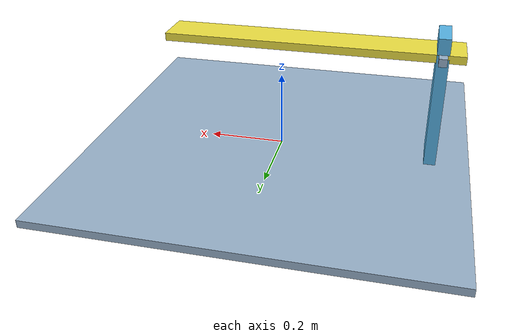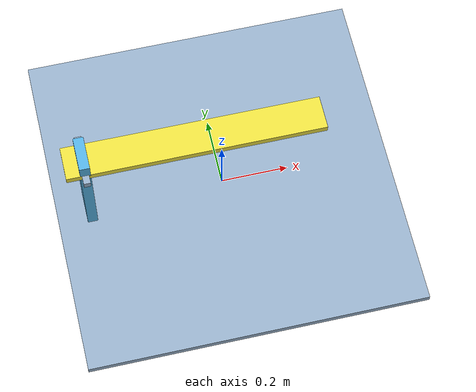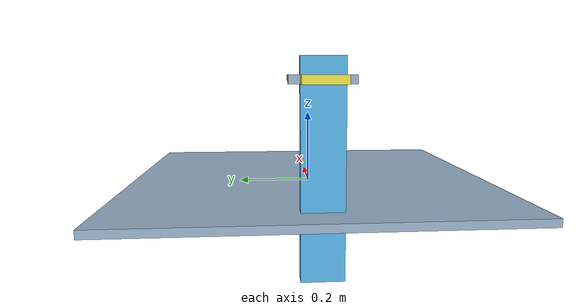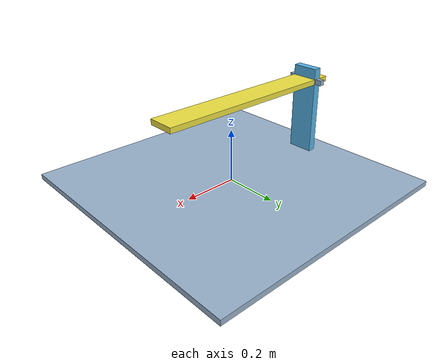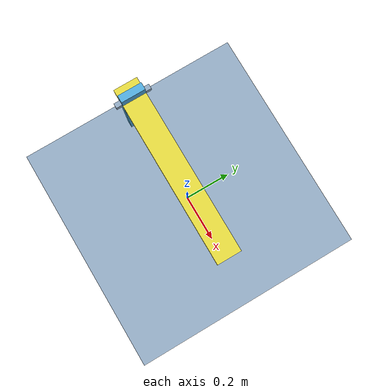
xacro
<?xml version="1.0"?>

<robot xmlns:xacro="http://www.ros.org/wiki/xacro" name="simplebean">
    <xacro:include filename="inertial_macros.xacro" />

    <material name="black">
        <color rgba="0 0 0 1" />
    </material>
    <material name="blue">
        <color rgba="0.6 0.7 0.8 1" />
    </material>

    <!--Bottom
    plane-->
    <link name="base_link">
        <visual>
            <geometry>
                <box size="1 1 0.02" />
            </geometry>
            <material name="blue" />
        </visual>
        <collision>
            <geometry>
                <box size="1 1 0.02" />
            </geometry>
            <material name="blue" />
        </collision>
        <xacro:solid_cuboid_inertia mass="1" height="0.02" depth="1" width="1">
            <origin rpy="0 0 0" xyz="0 0 0" />
        </xacro:solid_cuboid_inertia>
    </link>

    <!-- Left Rod -->
    <link name="left_rod">
        <visual>
            <geometry>
                <box size="0.03 0.1 0.5" />
            </geometry>
            <origin rpy="0 0 0" />
        </visual>
        <collision>
            <geometry>
                <box size="0.03 0.1 0.5" />
            </geometry>
            <origin rpy="0 0 0" />
        </collision>
        <xacro:solid_cuboid_inertia mass="1" height="0.03" depth="0.1" width="0.5">
            <origin rpy="0 0 0" xyz="0 0 0" />
        </xacro:solid_cuboid_inertia>
    </link>

    <joint name="base_to_left_rod" type="fixed">
        <parent link="base_link" />
        <child link="left_rod" />
        <origin xyz="-0.40 0 0.1" />
    </joint>

    <!-- Left Hinge -->
    <link name="left_hinge">
        <visual>
            <geometry>
                <box size="0.15 0.02 0.02" />
            </geometry>
            <origin xyz="0 0 0 " rpy="0 0 1.57075" />
            <material name="blue" />
        </visual>
        <xacro:solid_cuboid_inertia mass="1" height="0.02" depth="0.02" width="0.15">
            <origin xyz="0 0 0 " rpy="0 0 1.57075" />
        </xacro:solid_cuboid_inertia>
    </link>
    <joint name="rod_to_left_hinge" type="revolute">
        <parent link="left_rod" />
        <child link="left_hinge" />
        <axis xyz="0 1 0" />
        <origin xyz="0 0 0.2" />
        <limit effort="100" lower="-0.5" upper="0.5" velocity="100" />
    </joint>

    <!-- Center Beam -->
    <link name="center_beam">
        <visual>
            <geometry>
                <box size="0.02 0.1 0.75" />
            </geometry>
            <origin xyz="0.32 0 -0.1 " rpy="0 1.57075 0" />
        </visual>
        <collision>
            <geometry>
                <box size="0.02 0.1 0.75" />
            </geometry>
            <origin xyz="0.32 0 -0.1 " rpy="0 1.57075 0" />
        </collision>
        <xacro:solid_cuboid_inertia mass="1" height="0.75" depth="0.01" width="0.02">
            <origin xyz="0.32 0 -0.1 " rpy="0 1.57075 0" />
        </xacro:solid_cuboid_inertia>

    </link>

    <joint name="hinge_to_center_beam" type="continuous">
        <parent link="left_hinge" />
        <child link="center_beam" />
        <axis xyz="0 1 0" />
        <origin xyz="0 0 .1" />
    </joint>
</robot>
